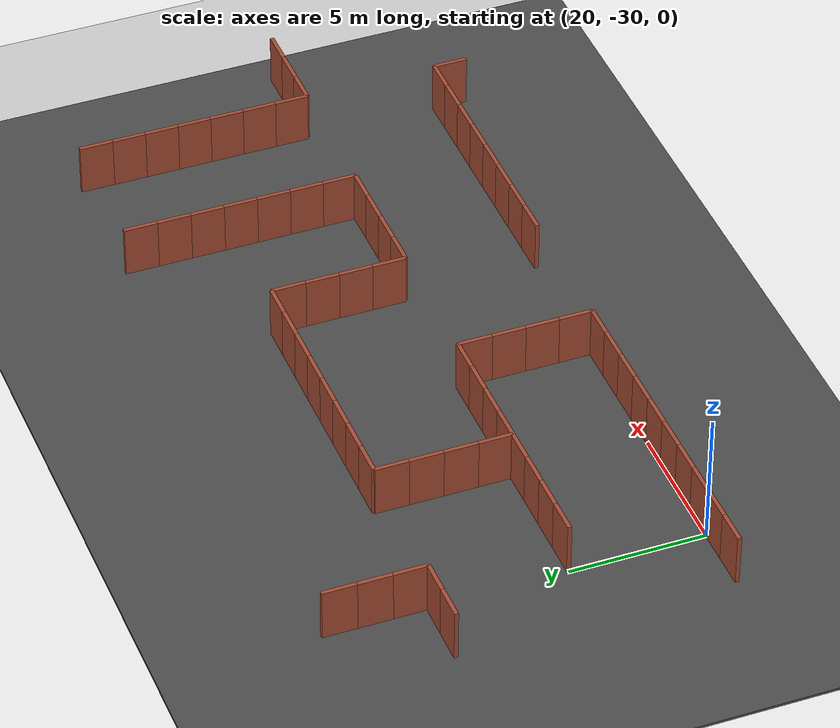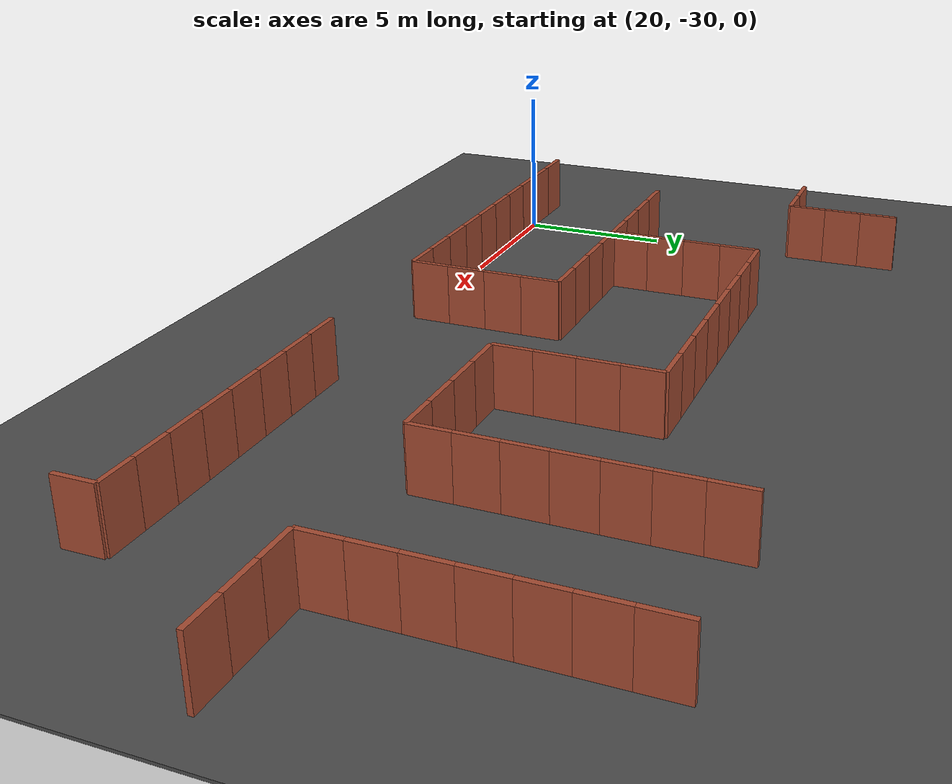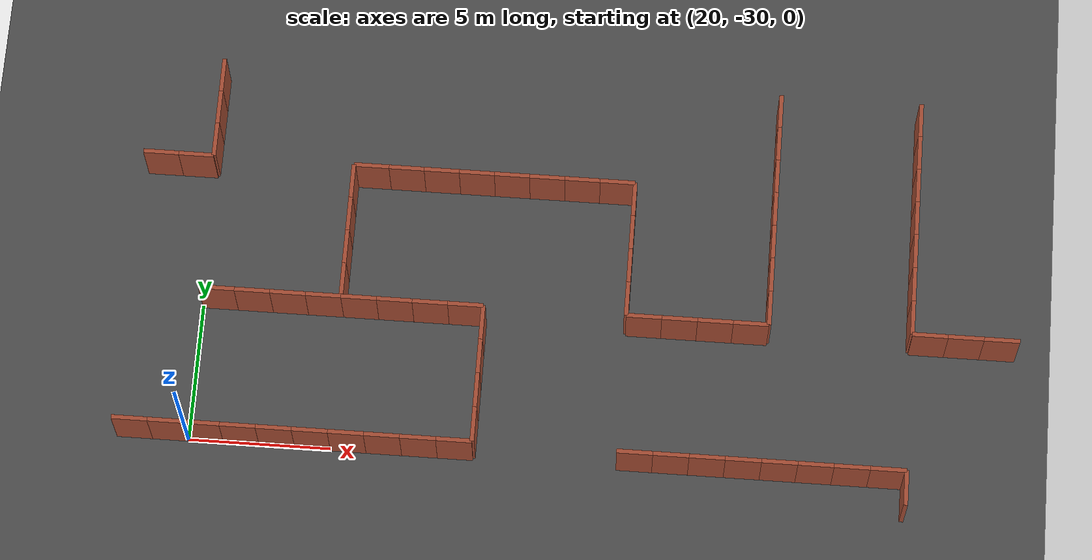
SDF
<sdf version="1.6">
 <world name="default">
  <model name="ground_plane">
   <static>1</static>
   <link name="link">
    <collision name="collision">
     <geometry><plane><normal>0 0 1</normal><size>100 100</size></plane></geometry>
     <surface><friction><ode><mu>100</mu><mu2>50</mu2></ode></friction></surface>
    </collision>
    <visual name="visual">
     <cast_shadows>0</cast_shadows>
     <geometry><plane><normal>0 0 1</normal><size>100 100</size></plane></geometry>
     <material>
      <script><uri>file://media/materials/scripts/gazebo.material</uri><name>Gazebo/Grey</name></script>
     </material>
    </visual>
   </link>
  </model>
  <model name="asphalt_plane">
   <static>1</static>
   <link name="link">
    <collision name="collision"><geometry><box><size>100 100 0.1</size></box></geometry></collision>
    <visual name="visual">
     <cast_shadows>0</cast_shadows>
     <geometry><box><size>100 100 0.1</size></box></geometry>
     <material>
      <script>
       <uri>model://asphalt_plane/materials/scripts</uri>
       <uri>model://asphalt_plane/materials/textures</uri>
       <name>vrc/asphalt</name>
      </script>
     </material>
    </visual>
   </link>
  </model>
  <model name="brick_wall_27_8_vertical1">
   <pose>18.125 -30 0 0 -0 0</pose>
   <link name="Wall_0">
    <collision name="Wall_0_Collision">
     <geometry><box><size>1.25 0.15 2</size></box></geometry>
     <pose>0 0 1 0 -0 0</pose>
    </collision>
    <visual name="Wall_0_Visual">
     <pose>0 0 1 0 -0 0</pose>
     <geometry><box><size>1.25 0.15 2</size></box></geometry>
     <material>
      <script><uri>file://media/materials/scripts/gazebo.material</uri><name>Gazebo/Bricks</name></script>
      <ambient>1 1 1 1</ambient>
     </material>
     <meta><layer>0</layer></meta>
    </visual>
   </link>
   <static>1</static>
  </model>
  <model name="brick_wall_27_12_vertical1">
   <pose>18.125 -20 0 0 -0 0</pose>
   <link name="Wall_0">
    <collision name="Wall_0_Collision">
     <geometry><box><size>1.25 0.15 2</size></box></geometry>
     <pose>0 0 1 0 -0 0</pose>
    </collision>
    <visual name="Wall_0_Visual">
     <pose>0 0 1 0 -0 0</pose>
     <geometry><box><size>1.25 0.15 2</size></box></geometry>
     <material>
      <script><uri>file://media/materials/scripts/gazebo.material</uri><name>Gazebo/Bricks</name></script>
      <ambient>1 1 1 1</ambient>
     </material>
     <meta><layer>0</layer></meta>
    </visual>
   </link>
   <static>1</static>
  </model>
  <model name="brick_wall_28_8_vertical1">
   <pose>20.625 -30 0 0 -0 0</pose>
   <link name="Wall_0">
    <collision name="Wall_0_Collision">
     <geometry><box><size>1.25 0.15 2</size></box></geometry>
     <pose>0 0 1 0 -0 0</pose>
    </collision>
    <visual name="Wall_0_Visual">
     <pose>0 0 1 0 -0 0</pose>
     <geometry><box><size>1.25 0.15 2</size></box></geometry>
     <material>
      <script><uri>file://media/materials/scripts/gazebo.material</uri><name>Gazebo/Bricks</name></script>
      <ambient>1 1 1 1</ambient>
     </material>
     <meta><layer>0</layer></meta>
    </visual>
   </link>
   <static>1</static>
  </model>
  <model name="brick_wall_28_8_vertical2">
   <pose>19.375 -30 0 0 -0 0</pose>
   <link name="Wall_0">
    <collision name="Wall_0_Collision">
     <geometry><box><size>1.25 0.15 2</size></box></geometry>
     <pose>0 0 1 0 -0 0</pose>
    </collision>
    <visual name="Wall_0_Visual">
     <pose>0 0 1 0 -0 0</pose>
     <geometry><box><size>1.25 0.15 2</size></box></geometry>
     <material>
      <script><uri>file://media/materials/scripts/gazebo.material</uri><name>Gazebo/Bricks</name></script>
      <ambient>1 1 1 1</ambient>
     </material>
     <meta><layer>0</layer></meta>
    </visual>
   </link>
   <static>1</static>
  </model>
  <model name="brick_wall_28_10_vertical1">
   <pose>20.625 -25 0 0 -0 0</pose>
   <link name="Wall_0">
    <collision name="Wall_0_Collision">
     <geometry><box><size>1.25 0.15 2</size></box></geometry>
     <pose>0 0 1 0 -0 0</pose>
    </collision>
    <visual name="Wall_0_Visual">
     <pose>0 0 1 0 -0 0</pose>
     <geometry><box><size>1.25 0.15 2</size></box></geometry>
     <material>
      <script><uri>file://media/materials/scripts/gazebo.material</uri><name>Gazebo/Bricks</name></script>
      <ambient>1 1 1 1</ambient>
     </material>
     <meta><layer>0</layer></meta>
    </visual>
   </link>
   <static>1</static>
  </model>
  <model name="brick_wall_28_12_vertical2">
   <pose>19.375 -20 0 0 -0 0</pose>
   <link name="Wall_0">
    <collision name="Wall_0_Collision">
     <geometry><box><size>1.25 0.15 2</size></box></geometry>
     <pose>0 0 1 0 -0 0</pose>
    </collision>
    <visual name="Wall_0_Visual">
     <pose>0 0 1 0 -0 0</pose>
     <geometry><box><size>1.25 0.15 2</size></box></geometry>
     <material>
      <script><uri>file://media/materials/scripts/gazebo.material</uri><name>Gazebo/Bricks</name></script>
      <ambient>1 1 1 1</ambient>
     </material>
     <meta><layer>0</layer></meta>
    </visual>
   </link>
   <static>1</static>
  </model>
  <model name="brick_wall_28_12_horizontal1">
   <pose>20 -19.375 0 0 -0 1.5708</pose>
   <link name="Wall_0">
    <collision name="Wall_0_Collision">
     <geometry><box><size>1.25 0.15 2</size></box></geometry>
     <pose>0 0 1 0 -0 0</pose>
    </collision>
    <visual name="Wall_0_Visual">
     <pose>0 0 1 0 -0 0</pose>
     <geometry><box><size>1.25 0.15 2</size></box></geometry>
     <material>
      <script><uri>file://media/materials/scripts/gazebo.material</uri><name>Gazebo/Bricks</name></script>
      <ambient>1 1 1 1</ambient>
     </material>
     <meta><layer>0</layer></meta>
    </visual>
   </link>
   <static>1</static>
  </model>
  <model name="brick_wall_28_13_horizontal1">
   <pose>20 -16.875 0 0 -0 1.5708</pose>
   <link name="Wall_0">
    <collision name="Wall_0_Collision">
     <geometry><box><size>1.25 0.15 2</size></box></geometry>
     <pose>0 0 1 0 -0 0</pose>
    </collision>
    <visual name="Wall_0_Visual">
     <pose>0 0 1 0 -0 0</pose>
     <geometry><box><size>1.25 0.15 2</size></box></geometry>
     <material>
      <script><uri>file://media/materials/scripts/gazebo.material</uri><name>Gazebo/Bricks</name></script>
      <ambient>1 1 1 1</ambient>
     </material>
     <meta><layer>0</layer></meta>
    </visual>
   </link>
   <static>1</static>
  </model>
  <model name="brick_wall_28_13_horizontal2">
   <pose>20 -18.125 0 0 -0 1.5708</pose>
   <link name="Wall_0">
    <collision name="Wall_0_Collision">
     <geometry><box><size>1.25 0.15 2</size></box></geometry>
     <pose>0 0 1 0 -0 0</pose>
    </collision>
    <visual name="Wall_0_Visual">
     <pose>0 0 1 0 -0 0</pose>
     <geometry><box><size>1.25 0.15 2</size></box></geometry>
     <material>
      <script><uri>file://media/materials/scripts/gazebo.material</uri><name>Gazebo/Bricks</name></script>
      <ambient>1 1 1 1</ambient>
     </material>
     <meta><layer>0</layer></meta>
    </visual>
   </link>
   <static>1</static>
  </model>
  <model name="brick_wall_29_8_vertical1">
   <pose>23.125 -30 0 0 -0 0</pose>
   <link name="Wall_0">
    <collision name="Wall_0_Collision">
     <geometry><box><size>1.25 0.15 2</size></box></geometry>
     <pose>0 0 1 0 -0 0</pose>
    </collision>
    <visual name="Wall_0_Visual">
     <pose>0 0 1 0 -0 0</pose>
     <geometry><box><size>1.25 0.15 2</size></box></geometry>
     <material>
      <script><uri>file://media/materials/scripts/gazebo.material</uri><name>Gazebo/Bricks</name></script>
      <ambient>1 1 1 1</ambient>
     </material>
     <meta><layer>0</layer></meta>
    </visual>
   </link>
   <static>1</static>
  </model>
  <model name="brick_wall_29_8_vertical2">
   <pose>21.875 -30 0 0 -0 0</pose>
   <link name="Wall_0">
    <collision name="Wall_0_Collision">
     <geometry><box><size>1.25 0.15 2</size></box></geometry>
     <pose>0 0 1 0 -0 0</pose>
    </collision>
    <visual name="Wall_0_Visual">
     <pose>0 0 1 0 -0 0</pose>
     <geometry><box><size>1.25 0.15 2</size></box></geometry>
     <material>
      <script><uri>file://media/materials/scripts/gazebo.material</uri><name>Gazebo/Bricks</name></script>
      <ambient>1 1 1 1</ambient>
     </material>
     <meta><layer>0</layer></meta>
    </visual>
   </link>
   <static>1</static>
  </model>
  <model name="brick_wall_29_10_vertical1">
   <pose>23.125 -25 0 0 -0 0</pose>
   <link name="Wall_0">
    <collision name="Wall_0_Collision">
     <geometry><box><size>1.25 0.15 2</size></box></geometry>
     <pose>0 0 1 0 -0 0</pose>
    </collision>
    <visual name="Wall_0_Visual">
     <pose>0 0 1 0 -0 0</pose>
     <geometry><box><size>1.25 0.15 2</size></box></geometry>
     <material>
      <script><uri>file://media/materials/scripts/gazebo.material</uri><name>Gazebo/Bricks</name></script>
      <ambient>1 1 1 1</ambient>
     </material>
     <meta><layer>0</layer></meta>
    </visual>
   </link>
   <static>1</static>
  </model>
  <model name="brick_wall_29_10_vertical2">
   <pose>21.875 -25 0 0 -0 0</pose>
   <link name="Wall_0">
    <collision name="Wall_0_Collision">
     <geometry><box><size>1.25 0.15 2</size></box></geometry>
     <pose>0 0 1 0 -0 0</pose>
    </collision>
    <visual name="Wall_0_Visual">
     <pose>0 0 1 0 -0 0</pose>
     <geometry><box><size>1.25 0.15 2</size></box></geometry>
     <material>
      <script><uri>file://media/materials/scripts/gazebo.material</uri><name>Gazebo/Bricks</name></script>
      <ambient>1 1 1 1</ambient>
     </material>
     <meta><layer>0</layer></meta>
    </visual>
   </link>
   <static>1</static>
  </model>
  <model name="brick_wall_30_8_vertical1">
   <pose>25.625 -30 0 0 -0 0</pose>
   <link name="Wall_0">
    <collision name="Wall_0_Collision">
     <geometry><box><size>1.25 0.15 2</size></box></geometry>
     <pose>0 0 1 0 -0 0</pose>
    </collision>
    <visual name="Wall_0_Visual">
     <pose>0 0 1 0 -0 0</pose>
     <geometry><box><size>1.25 0.15 2</size></box></geometry>
     <material>
      <script><uri>file://media/materials/scripts/gazebo.material</uri><name>Gazebo/Bricks</name></script>
      <ambient>1 1 1 1</ambient>
     </material>
     <meta><layer>0</layer></meta>
    </visual>
   </link>
   <static>1</static>
  </model>
  <model name="brick_wall_30_8_vertical2">
   <pose>24.375 -30 0 0 -0 0</pose>
   <link name="Wall_0">
    <collision name="Wall_0_Collision">
     <geometry><box><size>1.25 0.15 2</size></box></geometry>
     <pose>0 0 1 0 -0 0</pose>
    </collision>
    <visual name="Wall_0_Visual">
     <pose>0 0 1 0 -0 0</pose>
     <geometry><box><size>1.25 0.15 2</size></box></geometry>
     <material>
      <script><uri>file://media/materials/scripts/gazebo.material</uri><name>Gazebo/Bricks</name></script>
      <ambient>1 1 1 1</ambient>
     </material>
     <meta><layer>0</layer></meta>
    </visual>
   </link>
   <static>1</static>
  </model>
  <model name="brick_wall_30_10_vertical1">
   <pose>25.625 -25 0 0 -0 0</pose>
   <link name="Wall_0">
    <collision name="Wall_0_Collision">
     <geometry><box><size>1.25 0.15 2</size></box></geometry>
     <pose>0 0 1 0 -0 0</pose>
    </collision>
    <visual name="Wall_0_Visual">
     <pose>0 0 1 0 -0 0</pose>
     <geometry><box><size>1.25 0.15 2</size></box></geometry>
     <material>
      <script><uri>file://media/materials/scripts/gazebo.material</uri><name>Gazebo/Bricks</name></script>
      <ambient>1 1 1 1</ambient>
     </material>
     <meta><layer>0</layer></meta>
    </visual>
   </link>
   <static>1</static>
  </model>
  <model name="brick_wall_30_10_vertical2">
   <pose>24.375 -25 0 0 -0 0</pose>
   <link name="Wall_0">
    <collision name="Wall_0_Collision">
     <geometry><box><size>1.25 0.15 2</size></box></geometry>
     <pose>0 0 1 0 -0 0</pose>
    </collision>
    <visual name="Wall_0_Visual">
     <pose>0 0 1 0 -0 0</pose>
     <geometry><box><size>1.25 0.15 2</size></box></geometry>
     <material>
      <script><uri>file://media/materials/scripts/gazebo.material</uri><name>Gazebo/Bricks</name></script>
      <ambient>1 1 1 1</ambient>
     </material>
     <meta><layer>0</layer></meta>
    </visual>
   </link>
   <static>1</static>
  </model>
  <model name="brick_wall_30_10_horizontal1">
   <pose>25 -24.375 0 0 -0 1.5708</pose>
   <link name="Wall_0">
    <collision name="Wall_0_Collision">
     <geometry><box><size>1.25 0.15 2</size></box></geometry>
     <pose>0 0 1 0 -0 0</pose>
    </collision>
    <visual name="Wall_0_Visual">
     <pose>0 0 1 0 -0 0</pose>
     <geometry><box><size>1.25 0.15 2</size></box></geometry>
     <material>
      <script><uri>file://media/materials/scripts/gazebo.material</uri><name>Gazebo/Bricks</name></script>
      <ambient>1 1 1 1</ambient>
     </material>
     <meta><layer>0</layer></meta>
    </visual>
   </link>
   <static>1</static>
  </model>
  <model name="brick_wall_30_11_horizontal1">
   <pose>25 -21.875 0 0 -0 1.5708</pose>
   <link name="Wall_0">
    <collision name="Wall_0_Collision">
     <geometry><box><size>1.25 0.15 2</size></box></geometry>
     <pose>0 0 1 0 -0 0</pose>
    </collision>
    <visual name="Wall_0_Visual">
     <pose>0 0 1 0 -0 0</pose>
     <geometry><box><size>1.25 0.15 2</size></box></geometry>
     <material>
      <script><uri>file://media/materials/scripts/gazebo.material</uri><name>Gazebo/Bricks</name></script>
      <ambient>1 1 1 1</ambient>
     </material>
     <meta><layer>0</layer></meta>
    </visual>
   </link>
   <static>1</static>
  </model>
  <model name="brick_wall_30_11_horizontal2">
   <pose>25 -23.125 0 0 -0 1.5708</pose>
   <link name="Wall_0">
    <collision name="Wall_0_Collision">
     <geometry><box><size>1.25 0.15 2</size></box></geometry>
     <pose>0 0 1 0 -0 0</pose>
    </collision>
    <visual name="Wall_0_Visual">
     <pose>0 0 1 0 -0 0</pose>
     <geometry><box><size>1.25 0.15 2</size></box></geometry>
     <material>
      <script><uri>file://media/materials/scripts/gazebo.material</uri><name>Gazebo/Bricks</name></script>
      <ambient>1 1 1 1</ambient>
     </material>
     <meta><layer>0</layer></meta>
    </visual>
   </link>
   <static>1</static>
  </model>
  <model name="brick_wall_30_12_vertical1">
   <pose>25.625 -20 0 0 -0 0</pose>
   <link name="Wall_0">
    <collision name="Wall_0_Collision">
     <geometry><box><size>1.25 0.15 2</size></box></geometry>
     <pose>0 0 1 0 -0 0</pose>
    </collision>
    <visual name="Wall_0_Visual">
     <pose>0 0 1 0 -0 0</pose>
     <geometry><box><size>1.25 0.15 2</size></box></geometry>
     <material>
      <script><uri>file://media/materials/scripts/gazebo.material</uri><name>Gazebo/Bricks</name></script>
      <ambient>1 1 1 1</ambient>
     </material>
     <meta><layer>0</layer></meta>
    </visual>
   </link>
   <static>1</static>
  </model>
  <model name="brick_wall_30_12_horizontal2">
   <pose>25 -20.625 0 0 -0 1.5708</pose>
   <link name="Wall_0">
    <collision name="Wall_0_Collision">
     <geometry><box><size>1.25 0.15 2</size></box></geometry>
     <pose>0 0 1 0 -0 0</pose>
    </collision>
    <visual name="Wall_0_Visual">
     <pose>0 0 1 0 -0 0</pose>
     <geometry><box><size>1.25 0.15 2</size></box></geometry>
     <material>
      <script><uri>file://media/materials/scripts/gazebo.material</uri><name>Gazebo/Bricks</name></script>
      <ambient>1 1 1 1</ambient>
     </material>
     <meta><layer>0</layer></meta>
    </visual>
   </link>
   <static>1</static>
  </model>
  <model name="brick_wall_31_8_vertical1">
   <pose>28.125 -30 0 0 -0 0</pose>
   <link name="Wall_0">
    <collision name="Wall_0_Collision">
     <geometry><box><size>1.25 0.15 2</size></box></geometry>
     <pose>0 0 1 0 -0 0</pose>
    </collision>
    <visual name="Wall_0_Visual">
     <pose>0 0 1 0 -0 0</pose>
     <geometry><box><size>1.25 0.15 2</size></box></geometry>
     <material>
      <script><uri>file://media/materials/scripts/gazebo.material</uri><name>Gazebo/Bricks</name></script>
      <ambient>1 1 1 1</ambient>
     </material>
     <meta><layer>0</layer></meta>
    </visual>
   </link>
   <static>1</static>
  </model>
  <model name="brick_wall_31_8_vertical2">
   <pose>26.875 -30 0 0 -0 0</pose>
   <link name="Wall_0">
    <collision name="Wall_0_Collision">
     <geometry><box><size>1.25 0.15 2</size></box></geometry>
     <pose>0 0 1 0 -0 0</pose>
    </collision>
    <visual name="Wall_0_Visual">
     <pose>0 0 1 0 -0 0</pose>
     <geometry><box><size>1.25 0.15 2</size></box></geometry>
     <material>
      <script><uri>file://media/materials/scripts/gazebo.material</uri><name>Gazebo/Bricks</name></script>
      <ambient>1 1 1 1</ambient>
     </material>
     <meta><layer>0</layer></meta>
    </visual>
   </link>
   <static>1</static>
  </model>
  <model name="brick_wall_31_10_vertical1">
   <pose>28.125 -25 0 0 -0 0</pose>
   <link name="Wall_0">
    <collision name="Wall_0_Collision">
     <geometry><box><size>1.25 0.15 2</size></box></geometry>
     <pose>0 0 1 0 -0 0</pose>
    </collision>
    <visual name="Wall_0_Visual">
     <pose>0 0 1 0 -0 0</pose>
     <geometry><box><size>1.25 0.15 2</size></box></geometry>
     <material>
      <script><uri>file://media/materials/scripts/gazebo.material</uri><name>Gazebo/Bricks</name></script>
      <ambient>1 1 1 1</ambient>
     </material>
     <meta><layer>0</layer></meta>
    </visual>
   </link>
   <static>1</static>
  </model>
  <model name="brick_wall_31_10_vertical2">
   <pose>26.875 -25 0 0 -0 0</pose>
   <link name="Wall_0">
    <collision name="Wall_0_Collision">
     <geometry><box><size>1.25 0.15 2</size></box></geometry>
     <pose>0 0 1 0 -0 0</pose>
    </collision>
    <visual name="Wall_0_Visual">
     <pose>0 0 1 0 -0 0</pose>
     <geometry><box><size>1.25 0.15 2</size></box></geometry>
     <material>
      <script><uri>file://media/materials/scripts/gazebo.material</uri><name>Gazebo/Bricks</name></script>
      <ambient>1 1 1 1</ambient>
     </material>
     <meta><layer>0</layer></meta>
    </visual>
   </link>
   <static>1</static>
  </model>
  <model name="brick_wall_31_12_vertical1">
   <pose>28.125 -20 0 0 -0 0</pose>
   <link name="Wall_0">
    <collision name="Wall_0_Collision">
     <geometry><box><size>1.25 0.15 2</size></box></geometry>
     <pose>0 0 1 0 -0 0</pose>
    </collision>
    <visual name="Wall_0_Visual">
     <pose>0 0 1 0 -0 0</pose>
     <geometry><box><size>1.25 0.15 2</size></box></geometry>
     <material>
      <script><uri>file://media/materials/scripts/gazebo.material</uri><name>Gazebo/Bricks</name></script>
      <ambient>1 1 1 1</ambient>
     </material>
     <meta><layer>0</layer></meta>
    </visual>
   </link>
   <static>1</static>
  </model>
  <model name="brick_wall_31_12_vertical2">
   <pose>26.875 -20 0 0 -0 0</pose>
   <link name="Wall_0">
    <collision name="Wall_0_Collision">
     <geometry><box><size>1.25 0.15 2</size></box></geometry>
     <pose>0 0 1 0 -0 0</pose>
    </collision>
    <visual name="Wall_0_Visual">
     <pose>0 0 1 0 -0 0</pose>
     <geometry><box><size>1.25 0.15 2</size></box></geometry>
     <material>
      <script><uri>file://media/materials/scripts/gazebo.material</uri><name>Gazebo/Bricks</name></script>
      <ambient>1 1 1 1</ambient>
     </material>
     <meta><layer>0</layer></meta>
    </visual>
   </link>
   <static>1</static>
  </model>
  <model name="brick_wall_32_8_vertical2">
   <pose>29.375 -30 0 0 -0 0</pose>
   <link name="Wall_0">
    <collision name="Wall_0_Collision">
     <geometry><box><size>1.25 0.15 2</size></box></geometry>
     <pose>0 0 1 0 -0 0</pose>
    </collision>
    <visual name="Wall_0_Visual">
     <pose>0 0 1 0 -0 0</pose>
     <geometry><box><size>1.25 0.15 2</size></box></geometry>
     <material>
      <script><uri>file://media/materials/scripts/gazebo.material</uri><name>Gazebo/Bricks</name></script>
      <ambient>1 1 1 1</ambient>
     </material>
     <meta><layer>0</layer></meta>
    </visual>
   </link>
   <static>1</static>
  </model>
  <model name="brick_wall_32_8_horizontal1">
   <pose>30 -29.375 0 0 -0 1.5708</pose>
   <link name="Wall_0">
    <collision name="Wall_0_Collision">
     <geometry><box><size>1.25 0.15 2</size></box></geometry>
     <pose>0 0 1 0 -0 0</pose>
    </collision>
    <visual name="Wall_0_Visual">
     <pose>0 0 1 0 -0 0</pose>
     <geometry><box><size>1.25 0.15 2</size></box></geometry>
     <material>
      <script><uri>file://media/materials/scripts/gazebo.material</uri><name>Gazebo/Bricks</name></script>
      <ambient>1 1 1 1</ambient>
     </material>
     <meta><layer>0</layer></meta>
    </visual>
   </link>
   <static>1</static>
  </model>
  <model name="brick_wall_32_9_horizontal1">
   <pose>30 -26.875 0 0 -0 1.5708</pose>
   <link name="Wall_0">
    <collision name="Wall_0_Collision">
     <geometry><box><size>1.25 0.15 2</size></box></geometry>
     <pose>0 0 1 0 -0 0</pose>
    </collision>
    <visual name="Wall_0_Visual">
     <pose>0 0 1 0 -0 0</pose>
     <geometry><box><size>1.25 0.15 2</size></box></geometry>
     <material>
      <script><uri>file://media/materials/scripts/gazebo.material</uri><name>Gazebo/Bricks</name></script>
      <ambient>1 1 1 1</ambient>
     </material>
     <meta><layer>0</layer></meta>
    </visual>
   </link>
   <static>1</static>
  </model>
  <model name="brick_wall_32_9_horizontal2">
   <pose>30 -28.125 0 0 -0 1.5708</pose>
   <link name="Wall_0">
    <collision name="Wall_0_Collision">
     <geometry><box><size>1.25 0.15 2</size></box></geometry>
     <pose>0 0 1 0 -0 0</pose>
    </collision>
    <visual name="Wall_0_Visual">
     <pose>0 0 1 0 -0 0</pose>
     <geometry><box><size>1.25 0.15 2</size></box></geometry>
     <material>
      <script><uri>file://media/materials/scripts/gazebo.material</uri><name>Gazebo/Bricks</name></script>
      <ambient>1 1 1 1</ambient>
     </material>
     <meta><layer>0</layer></meta>
    </visual>
   </link>
   <static>1</static>
  </model>
  <model name="brick_wall_32_10_vertical2">
   <pose>29.375 -25 0 0 -0 0</pose>
   <link name="Wall_0">
    <collision name="Wall_0_Collision">
     <geometry><box><size>1.25 0.15 2</size></box></geometry>
     <pose>0 0 1 0 -0 0</pose>
    </collision>
    <visual name="Wall_0_Visual">
     <pose>0 0 1 0 -0 0</pose>
     <geometry><box><size>1.25 0.15 2</size></box></geometry>
     <material>
      <script><uri>file://media/materials/scripts/gazebo.material</uri><name>Gazebo/Bricks</name></script>
      <ambient>1 1 1 1</ambient>
     </material>
     <meta><layer>0</layer></meta>
    </visual>
   </link>
   <static>1</static>
  </model>
  <model name="brick_wall_32_10_horizontal2">
   <pose>30 -25.625 0 0 -0 1.5708</pose>
   <link name="Wall_0">
    <collision name="Wall_0_Collision">
     <geometry><box><size>1.25 0.15 2</size></box></geometry>
     <pose>0 0 1 0 -0 0</pose>
    </collision>
    <visual name="Wall_0_Visual">
     <pose>0 0 1 0 -0 0</pose>
     <geometry><box><size>1.25 0.15 2</size></box></geometry>
     <material>
      <script><uri>file://media/materials/scripts/gazebo.material</uri><name>Gazebo/Bricks</name></script>
      <ambient>1 1 1 1</ambient>
     </material>
     <meta><layer>0</layer></meta>
    </visual>
   </link>
   <static>1</static>
  </model>
  <model name="brick_wall_32_12_vertical1">
   <pose>30.625 -20 0 0 -0 0</pose>
   <link name="Wall_0">
    <collision name="Wall_0_Collision">
     <geometry><box><size>1.25 0.15 2</size></box></geometry>
     <pose>0 0 1 0 -0 0</pose>
    </collision>
    <visual name="Wall_0_Visual">
     <pose>0 0 1 0 -0 0</pose>
     <geometry><box><size>1.25 0.15 2</size></box></geometry>
     <material>
      <script><uri>file://media/materials/scripts/gazebo.material</uri><name>Gazebo/Bricks</name></script>
      <ambient>1 1 1 1</ambient>
     </material>
     <meta><layer>0</layer></meta>
    </visual>
   </link>
   <static>1</static>
  </model>
  <model name="brick_wall_32_12_vertical2">
   <pose>29.375 -20 0 0 -0 0</pose>
   <link name="Wall_0">
    <collision name="Wall_0_Collision">
     <geometry><box><size>1.25 0.15 2</size></box></geometry>
     <pose>0 0 1 0 -0 0</pose>
    </collision>
    <visual name="Wall_0_Visual">
     <pose>0 0 1 0 -0 0</pose>
     <geometry><box><size>1.25 0.15 2</size></box></geometry>
     <material>
      <script><uri>file://media/materials/scripts/gazebo.material</uri><name>Gazebo/Bricks</name></script>
      <ambient>1 1 1 1</ambient>
     </material>
     <meta><layer>0</layer></meta>
    </visual>
   </link>
   <static>1</static>
  </model>
  <model name="brick_wall_33_12_vertical1">
   <pose>33.125 -20 0 0 -0 0</pose>
   <link name="Wall_0">
    <collision name="Wall_0_Collision">
     <geometry><box><size>1.25 0.15 2</size></box></geometry>
     <pose>0 0 1 0 -0 0</pose>
    </collision>
    <visual name="Wall_0_Visual">
     <pose>0 0 1 0 -0 0</pose>
     <geometry><box><size>1.25 0.15 2</size></box></geometry>
     <material>
      <script><uri>file://media/materials/scripts/gazebo.material</uri><name>Gazebo/Bricks</name></script>
      <ambient>1 1 1 1</ambient>
     </material>
     <meta><layer>0</layer></meta>
    </visual>
   </link>
   <static>1</static>
  </model>
  <model name="brick_wall_33_12_vertical2">
   <pose>31.875 -20 0 0 -0 0</pose>
   <link name="Wall_0">
    <collision name="Wall_0_Collision">
     <geometry><box><size>1.25 0.15 2</size></box></geometry>
     <pose>0 0 1 0 -0 0</pose>
    </collision>
    <visual name="Wall_0_Visual">
     <pose>0 0 1 0 -0 0</pose>
     <geometry><box><size>1.25 0.15 2</size></box></geometry>
     <material>
      <script><uri>file://media/materials/scripts/gazebo.material</uri><name>Gazebo/Bricks</name></script>
      <ambient>1 1 1 1</ambient>
     </material>
     <meta><layer>0</layer></meta>
    </visual>
   </link>
   <static>1</static>
  </model>
  <model name="brick_wall_34_8_vertical1">
   <pose>35.625 -30 0 0 -0 0</pose>
   <link name="Wall_0">
    <collision name="Wall_0_Collision">
     <geometry><box><size>1.25 0.15 2</size></box></geometry>
     <pose>0 0 1 0 -0 0</pose>
    </collision>
    <visual name="Wall_0_Visual">
     <pose>0 0 1 0 -0 0</pose>
     <geometry><box><size>1.25 0.15 2</size></box></geometry>
     <material>
      <script><uri>file://media/materials/scripts/gazebo.material</uri><name>Gazebo/Bricks</name></script>
      <ambient>1 1 1 1</ambient>
     </material>
     <meta><layer>0</layer></meta>
    </visual>
   </link>
   <static>1</static>
  </model>
  <model name="brick_wall_34_10_vertical1">
   <pose>35.625 -25 0 0 -0 0</pose>
   <link name="Wall_0">
    <collision name="Wall_0_Collision">
     <geometry><box><size>1.25 0.15 2</size></box></geometry>
     <pose>0 0 1 0 -0 0</pose>
    </collision>
    <visual name="Wall_0_Visual">
     <pose>0 0 1 0 -0 0</pose>
     <geometry><box><size>1.25 0.15 2</size></box></geometry>
     <material>
      <script><uri>file://media/materials/scripts/gazebo.material</uri><name>Gazebo/Bricks</name></script>
      <ambient>1 1 1 1</ambient>
     </material>
     <meta><layer>0</layer></meta>
    </visual>
   </link>
   <static>1</static>
  </model>
  <model name="brick_wall_34_10_horizontal1">
   <pose>35 -24.375 0 0 -0 1.5708</pose>
   <link name="Wall_0">
    <collision name="Wall_0_Collision">
     <geometry><box><size>1.25 0.15 2</size></box></geometry>
     <pose>0 0 1 0 -0 0</pose>
    </collision>
    <visual name="Wall_0_Visual">
     <pose>0 0 1 0 -0 0</pose>
     <geometry><box><size>1.25 0.15 2</size></box></geometry>
     <material>
      <script><uri>file://media/materials/scripts/gazebo.material</uri><name>Gazebo/Bricks</name></script>
      <ambient>1 1 1 1</ambient>
     </material>
     <meta><layer>0</layer></meta>
    </visual>
   </link>
   <static>1</static>
  </model>
  <model name="brick_wall_34_11_horizontal1">
   <pose>35 -21.875 0 0 -0 1.5708</pose>
   <link name="Wall_0">
    <collision name="Wall_0_Collision">
     <geometry><box><size>1.25 0.15 2</size></box></geometry>
     <pose>0 0 1 0 -0 0</pose>
    </collision>
    <visual name="Wall_0_Visual">
     <pose>0 0 1 0 -0 0</pose>
     <geometry><box><size>1.25 0.15 2</size></box></geometry>
     <material>
      <script><uri>file://media/materials/scripts/gazebo.material</uri><name>Gazebo/Bricks</name></script>
      <ambient>1 1 1 1</ambient>
     </material>
     <meta><layer>0</layer></meta>
    </visual>
   </link>
   <static>1</static>
  </model>
  <model name="brick_wall_34_11_horizontal2">
   <pose>35 -23.125 0 0 -0 1.5708</pose>
   <link name="Wall_0">
    <collision name="Wall_0_Collision">
     <geometry><box><size>1.25 0.15 2</size></box></geometry>
     <pose>0 0 1 0 -0 0</pose>
    </collision>
    <visual name="Wall_0_Visual">
     <pose>0 0 1 0 -0 0</pose>
     <geometry><box><size>1.25 0.15 2</size></box></geometry>
     <material>
      <script><uri>file://media/materials/scripts/gazebo.material</uri><name>Gazebo/Bricks</name></script>
      <ambient>1 1 1 1</ambient>
     </material>
     <meta><layer>0</layer></meta>
    </visual>
   </link>
   <static>1</static>
  </model>
  <model name="brick_wall_34_12_vertical2">
   <pose>34.375 -20 0 0 -0 0</pose>
   <link name="Wall_0">
    <collision name="Wall_0_Collision">
     <geometry><box><size>1.25 0.15 2</size></box></geometry>
     <pose>0 0 1 0 -0 0</pose>
    </collision>
    <visual name="Wall_0_Visual">
     <pose>0 0 1 0 -0 0</pose>
     <geometry><box><size>1.25 0.15 2</size></box></geometry>
     <material>
      <script><uri>file://media/materials/scripts/gazebo.material</uri><name>Gazebo/Bricks</name></script>
      <ambient>1 1 1 1</ambient>
     </material>
     <meta><layer>0</layer></meta>
    </visual>
   </link>
   <static>1</static>
  </model>
  <model name="brick_wall_34_12_horizontal2">
   <pose>35 -20.625 0 0 -0 1.5708</pose>
   <link name="Wall_0">
    <collision name="Wall_0_Collision">
     <geometry><box><size>1.25 0.15 2</size></box></geometry>
     <pose>0 0 1 0 -0 0</pose>
    </collision>
    <visual name="Wall_0_Visual">
     <pose>0 0 1 0 -0 0</pose>
     <geometry><box><size>1.25 0.15 2</size></box></geometry>
     <material>
      <script><uri>file://media/materials/scripts/gazebo.material</uri><name>Gazebo/Bricks</name></script>
      <ambient>1 1 1 1</ambient>
     </material>
     <meta><layer>0</layer></meta>
    </visual>
   </link>
   <static>1</static>
  </model>
  <model name="brick_wall_35_8_vertical1">
   <pose>38.125 -30 0 0 -0 0</pose>
   <link name="Wall_0">
    <collision name="Wall_0_Collision">
     <geometry><box><size>1.25 0.15 2</size></box></geometry>
     <pose>0 0 1 0 -0 0</pose>
    </collision>
    <visual name="Wall_0_Visual">
     <pose>0 0 1 0 -0 0</pose>
     <geometry><box><size>1.25 0.15 2</size></box></geometry>
     <material>
      <script><uri>file://media/materials/scripts/gazebo.material</uri><name>Gazebo/Bricks</name></script>
      <ambient>1 1 1 1</ambient>
     </material>
     <meta><layer>0</layer></meta>
    </visual>
   </link>
   <static>1</static>
  </model>
  <model name="brick_wall_35_8_vertical2">
   <pose>36.875 -30 0 0 -0 0</pose>
   <link name="Wall_0">
    <collision name="Wall_0_Collision">
     <geometry><box><size>1.25 0.15 2</size></box></geometry>
     <pose>0 0 1 0 -0 0</pose>
    </collision>
    <visual name="Wall_0_Visual">
     <pose>0 0 1 0 -0 0</pose>
     <geometry><box><size>1.25 0.15 2</size></box></geometry>
     <material>
      <script><uri>file://media/materials/scripts/gazebo.material</uri><name>Gazebo/Bricks</name></script>
      <ambient>1 1 1 1</ambient>
     </material>
     <meta><layer>0</layer></meta>
    </visual>
   </link>
   <static>1</static>
  </model>
  <model name="brick_wall_35_10_vertical1">
   <pose>38.125 -25 0 0 -0 0</pose>
   <link name="Wall_0">
    <collision name="Wall_0_Collision">
     <geometry><box><size>1.25 0.15 2</size></box></geometry>
     <pose>0 0 1 0 -0 0</pose>
    </collision>
    <visual name="Wall_0_Visual">
     <pose>0 0 1 0 -0 0</pose>
     <geometry><box><size>1.25 0.15 2</size></box></geometry>
     <material>
      <script><uri>file://media/materials/scripts/gazebo.material</uri><name>Gazebo/Bricks</name></script>
      <ambient>1 1 1 1</ambient>
     </material>
     <meta><layer>0</layer></meta>
    </visual>
   </link>
   <static>1</static>
  </model>
  <model name="brick_wall_35_10_vertical2">
   <pose>36.875 -25 0 0 -0 0</pose>
   <link name="Wall_0">
    <collision name="Wall_0_Collision">
     <geometry><box><size>1.25 0.15 2</size></box></geometry>
     <pose>0 0 1 0 -0 0</pose>
    </collision>
    <visual name="Wall_0_Visual">
     <pose>0 0 1 0 -0 0</pose>
     <geometry><box><size>1.25 0.15 2</size></box></geometry>
     <material>
      <script><uri>file://media/materials/scripts/gazebo.material</uri><name>Gazebo/Bricks</name></script>
      <ambient>1 1 1 1</ambient>
     </material>
     <meta><layer>0</layer></meta>
    </visual>
   </link>
   <static>1</static>
  </model>
  <model name="brick_wall_36_8_vertical1">
   <pose>40.625 -30 0 0 -0 0</pose>
   <link name="Wall_0">
    <collision name="Wall_0_Collision">
     <geometry><box><size>1.25 0.15 2</size></box></geometry>
     <pose>0 0 1 0 -0 0</pose>
    </collision>
    <visual name="Wall_0_Visual">
     <pose>0 0 1 0 -0 0</pose>
     <geometry><box><size>1.25 0.15 2</size></box></geometry>
     <material>
      <script><uri>file://media/materials/scripts/gazebo.material</uri><name>Gazebo/Bricks</name></script>
      <ambient>1 1 1 1</ambient>
     </material>
     <meta><layer>0</layer></meta>
    </visual>
   </link>
   <static>1</static>
  </model>
  <model name="brick_wall_36_8_vertical2">
   <pose>39.375 -30 0 0 -0 0</pose>
   <link name="Wall_0">
    <collision name="Wall_0_Collision">
     <geometry><box><size>1.25 0.15 2</size></box></geometry>
     <pose>0 0 1 0 -0 0</pose>
    </collision>
    <visual name="Wall_0_Visual">
     <pose>0 0 1 0 -0 0</pose>
     <geometry><box><size>1.25 0.15 2</size></box></geometry>
     <material>
      <script><uri>file://media/materials/scripts/gazebo.material</uri><name>Gazebo/Bricks</name></script>
      <ambient>1 1 1 1</ambient>
     </material>
     <meta><layer>0</layer></meta>
    </visual>
   </link>
   <static>1</static>
  </model>
  <model name="brick_wall_36_10_vertical2">
   <pose>39.375 -25 0 0 -0 0</pose>
   <link name="Wall_0">
    <collision name="Wall_0_Collision">
     <geometry><box><size>1.25 0.15 2</size></box></geometry>
     <pose>0 0 1 0 -0 0</pose>
    </collision>
    <visual name="Wall_0_Visual">
     <pose>0 0 1 0 -0 0</pose>
     <geometry><box><size>1.25 0.15 2</size></box></geometry>
     <material>
      <script><uri>file://media/materials/scripts/gazebo.material</uri><name>Gazebo/Bricks</name></script>
      <ambient>1 1 1 1</ambient>
     </material>
     <meta><layer>0</layer></meta>
    </visual>
   </link>
   <static>1</static>
  </model>
  <model name="brick_wall_36_10_horizontal1">
   <pose>40 -24.375 0 0 -0 1.5708</pose>
   <link name="Wall_0">
    <collision name="Wall_0_Collision">
     <geometry><box><size>1.25 0.15 2</size></box></geometry>
     <pose>0 0 1 0 -0 0</pose>
    </collision>
    <visual name="Wall_0_Visual">
     <pose>0 0 1 0 -0 0</pose>
     <geometry><box><size>1.25 0.15 2</size></box></geometry>
     <material>
      <script><uri>file://media/materials/scripts/gazebo.material</uri><name>Gazebo/Bricks</name></script>
      <ambient>1 1 1 1</ambient>
     </material>
     <meta><layer>0</layer></meta>
    </visual>
   </link>
   <static>1</static>
  </model>
  <model name="brick_wall_36_11_horizontal1">
   <pose>40 -21.875 0 0 -0 1.5708</pose>
   <link name="Wall_0">
    <collision name="Wall_0_Collision">
     <geometry><box><size>1.25 0.15 2</size></box></geometry>
     <pose>0 0 1 0 -0 0</pose>
    </collision>
    <visual name="Wall_0_Visual">
     <pose>0 0 1 0 -0 0</pose>
     <geometry><box><size>1.25 0.15 2</size></box></geometry>
     <material>
      <script><uri>file://media/materials/scripts/gazebo.material</uri><name>Gazebo/Bricks</name></script>
      <ambient>1 1 1 1</ambient>
     </material>
     <meta><layer>0</layer></meta>
    </visual>
   </link>
   <static>1</static>
  </model>
  <model name="brick_wall_36_11_horizontal2">
   <pose>40 -23.125 0 0 -0 1.5708</pose>
   <link name="Wall_0">
    <collision name="Wall_0_Collision">
     <geometry><box><size>1.25 0.15 2</size></box></geometry>
     <pose>0 0 1 0 -0 0</pose>
    </collision>
    <visual name="Wall_0_Visual">
     <pose>0 0 1 0 -0 0</pose>
     <geometry><box><size>1.25 0.15 2</size></box></geometry>
     <material>
      <script><uri>file://media/materials/scripts/gazebo.material</uri><name>Gazebo/Bricks</name></script>
      <ambient>1 1 1 1</ambient>
     </material>
     <meta><layer>0</layer></meta>
    </visual>
   </link>
   <static>1</static>
  </model>
  <model name="brick_wall_36_12_horizontal1">
   <pose>40 -19.375 0 0 -0 1.5708</pose>
   <link name="Wall_0">
    <collision name="Wall_0_Collision">
     <geometry><box><size>1.25 0.15 2</size></box></geometry>
     <pose>0 0 1 0 -0 0</pose>
    </collision>
    <visual name="Wall_0_Visual">
     <pose>0 0 1 0 -0 0</pose>
     <geometry><box><size>1.25 0.15 2</size></box></geometry>
     <material>
      <script><uri>file://media/materials/scripts/gazebo.material</uri><name>Gazebo/Bricks</name></script>
      <ambient>1 1 1 1</ambient>
     </material>
     <meta><layer>0</layer></meta>
    </visual>
   </link>
   <static>1</static>
  </model>
  <model name="brick_wall_36_12_horizontal2">
   <pose>40 -20.625 0 0 -0 1.5708</pose>
   <link name="Wall_0">
    <collision name="Wall_0_Collision">
     <geometry><box><size>1.25 0.15 2</size></box></geometry>
     <pose>0 0 1 0 -0 0</pose>
    </collision>
    <visual name="Wall_0_Visual">
     <pose>0 0 1 0 -0 0</pose>
     <geometry><box><size>1.25 0.15 2</size></box></geometry>
     <material>
      <script><uri>file://media/materials/scripts/gazebo.material</uri><name>Gazebo/Bricks</name></script>
      <ambient>1 1 1 1</ambient>
     </material>
     <meta><layer>0</layer></meta>
    </visual>
   </link>
   <static>1</static>
  </model>
  <model name="brick_wall_36_13_horizontal1">
   <pose>40 -16.875 0 0 -0 1.5708</pose>
   <link name="Wall_0">
    <collision name="Wall_0_Collision">
     <geometry><box><size>1.25 0.15 2</size></box></geometry>
     <pose>0 0 1 0 -0 0</pose>
    </collision>
    <visual name="Wall_0_Visual">
     <pose>0 0 1 0 -0 0</pose>
     <geometry><box><size>1.25 0.15 2</size></box></geometry>
     <material>
      <script><uri>file://media/materials/scripts/gazebo.material</uri><name>Gazebo/Bricks</name></script>
      <ambient>1 1 1 1</ambient>
     </material>
     <meta><layer>0</layer></meta>
    </visual>
   </link>
   <static>1</static>
  </model>
  <model name="brick_wall_36_13_horizontal2">
   <pose>40 -18.125 0 0 -0 1.5708</pose>
   <link name="Wall_0">
    <collision name="Wall_0_Collision">
     <geometry><box><size>1.25 0.15 2</size></box></geometry>
     <pose>0 0 1 0 -0 0</pose>
    </collision>
    <visual name="Wall_0_Visual">
     <pose>0 0 1 0 -0 0</pose>
     <geometry><box><size>1.25 0.15 2</size></box></geometry>
     <material>
      <script><uri>file://media/materials/scripts/gazebo.material</uri><name>Gazebo/Bricks</name></script>
      <ambient>1 1 1 1</ambient>
     </material>
     <meta><layer>0</layer></meta>
    </visual>
   </link>
   <static>1</static>
  </model>
  <model name="brick_wall_37_8_vertical1">
   <pose>43.125 -30 0 0 -0 0</pose>
   <link name="Wall_0">
    <collision name="Wall_0_Collision">
     <geometry><box><size>1.25 0.15 2</size></box></geometry>
     <pose>0 0 1 0 -0 0</pose>
    </collision>
    <visual name="Wall_0_Visual">
     <pose>0 0 1 0 -0 0</pose>
     <geometry><box><size>1.25 0.15 2</size></box></geometry>
     <material>
      <script><uri>file://media/materials/scripts/gazebo.material</uri><name>Gazebo/Bricks</name></script>
      <ambient>1 1 1 1</ambient>
     </material>
     <meta><layer>0</layer></meta>
    </visual>
   </link>
   <static>1</static>
  </model>
  <model name="brick_wall_37_8_vertical2">
   <pose>41.875 -30 0 0 -0 0</pose>
   <link name="Wall_0">
    <collision name="Wall_0_Collision">
     <geometry><box><size>1.25 0.15 2</size></box></geometry>
     <pose>0 0 1 0 -0 0</pose>
    </collision>
    <visual name="Wall_0_Visual">
     <pose>0 0 1 0 -0 0</pose>
     <geometry><box><size>1.25 0.15 2</size></box></geometry>
     <material>
      <script><uri>file://media/materials/scripts/gazebo.material</uri><name>Gazebo/Bricks</name></script>
      <ambient>1 1 1 1</ambient>
     </material>
     <meta><layer>0</layer></meta>
    </visual>
   </link>
   <static>1</static>
  </model>
  <model name="brick_wall_38_8_vertical2">
   <pose>44.375 -30 0 0 -0 0</pose>
   <link name="Wall_0">
    <collision name="Wall_0_Collision">
     <geometry><box><size>1.25 0.15 2</size></box></geometry>
     <pose>0 0 1 0 -0 0</pose>
    </collision>
    <visual name="Wall_0_Visual">
     <pose>0 0 1 0 -0 0</pose>
     <geometry><box><size>1.25 0.15 2</size></box></geometry>
     <material>
      <script><uri>file://media/materials/scripts/gazebo.material</uri><name>Gazebo/Bricks</name></script>
      <ambient>1 1 1 1</ambient>
     </material>
     <meta><layer>0</layer></meta>
    </visual>
   </link>
   <static>1</static>
  </model>
  <model name="brick_wall_38_8_horizontal2">
   <pose>45 -30.625 0 0 -0 1.5708</pose>
   <link name="Wall_0">
    <collision name="Wall_0_Collision">
     <geometry><box><size>1.25 0.15 2</size></box></geometry>
     <pose>0 0 1 0 -0 0</pose>
    </collision>
    <visual name="Wall_0_Visual">
     <pose>0 0 1 0 -0 0</pose>
     <geometry><box><size>1.25 0.15 2</size></box></geometry>
     <material>
      <script><uri>file://media/materials/scripts/gazebo.material</uri><name>Gazebo/Bricks</name></script>
      <ambient>1 1 1 1</ambient>
     </material>
     <meta><layer>0</layer></meta>
    </visual>
   </link>
   <static>1</static>
  </model>
  <model name="brick_wall_38_10_vertical1">
   <pose>45.625 -25 0 0 -0 0</pose>
   <link name="Wall_0">
    <collision name="Wall_0_Collision">
     <geometry><box><size>1.25 0.15 2</size></box></geometry>
     <pose>0 0 1 0 -0 0</pose>
    </collision>
    <visual name="Wall_0_Visual">
     <pose>0 0 1 0 -0 0</pose>
     <geometry><box><size>1.25 0.15 2</size></box></geometry>
     <material>
      <script><uri>file://media/materials/scripts/gazebo.material</uri><name>Gazebo/Bricks</name></script>
      <ambient>1 1 1 1</ambient>
     </material>
     <meta><layer>0</layer></meta>
    </visual>
   </link>
   <static>1</static>
  </model>
  <model name="brick_wall_38_10_horizontal1">
   <pose>45 -24.375 0 0 -0 1.5708</pose>
   <link name="Wall_0">
    <collision name="Wall_0_Collision">
     <geometry><box><size>1.25 0.15 2</size></box></geometry>
     <pose>0 0 1 0 -0 0</pose>
    </collision>
    <visual name="Wall_0_Visual">
     <pose>0 0 1 0 -0 0</pose>
     <geometry><box><size>1.25 0.15 2</size></box></geometry>
     <material>
      <script><uri>file://media/materials/scripts/gazebo.material</uri><name>Gazebo/Bricks</name></script>
      <ambient>1 1 1 1</ambient>
     </material>
     <meta><layer>0</layer></meta>
    </visual>
   </link>
   <static>1</static>
  </model>
  <model name="brick_wall_38_11_horizontal1">
   <pose>45 -21.875 0 0 -0 1.5708</pose>
   <link name="Wall_0">
    <collision name="Wall_0_Collision">
     <geometry><box><size>1.25 0.15 2</size></box></geometry>
     <pose>0 0 1 0 -0 0</pose>
    </collision>
    <visual name="Wall_0_Visual">
     <pose>0 0 1 0 -0 0</pose>
     <geometry><box><size>1.25 0.15 2</size></box></geometry>
     <material>
      <script><uri>file://media/materials/scripts/gazebo.material</uri><name>Gazebo/Bricks</name></script>
      <ambient>1 1 1 1</ambient>
     </material>
     <meta><layer>0</layer></meta>
    </visual>
   </link>
   <static>1</static>
  </model>
  <model name="brick_wall_38_11_horizontal2">
   <pose>45 -23.125 0 0 -0 1.5708</pose>
   <link name="Wall_0">
    <collision name="Wall_0_Collision">
     <geometry><box><size>1.25 0.15 2</size></box></geometry>
     <pose>0 0 1 0 -0 0</pose>
    </collision>
    <visual name="Wall_0_Visual">
     <pose>0 0 1 0 -0 0</pose>
     <geometry><box><size>1.25 0.15 2</size></box></geometry>
     <material>
      <script><uri>file://media/materials/scripts/gazebo.material</uri><name>Gazebo/Bricks</name></script>
      <ambient>1 1 1 1</ambient>
     </material>
     <meta><layer>0</layer></meta>
    </visual>
   </link>
   <static>1</static>
  </model>
  <model name="brick_wall_38_12_horizontal1">
   <pose>45 -19.375 0 0 -0 1.5708</pose>
   <link name="Wall_0">
    <collision name="Wall_0_Collision">
     <geometry><box><size>1.25 0.15 2</size></box></geometry>
     <pose>0 0 1 0 -0 0</pose>
    </collision>
    <visual name="Wall_0_Visual">
     <pose>0 0 1 0 -0 0</pose>
     <geometry><box><size>1.25 0.15 2</size></box></geometry>
     <material>
      <script><uri>file://media/materials/scripts/gazebo.material</uri><name>Gazebo/Bricks</name></script>
      <ambient>1 1 1 1</ambient>
     </material>
     <meta><layer>0</layer></meta>
    </visual>
   </link>
   <static>1</static>
  </model>
  <model name="brick_wall_38_12_horizontal2">
   <pose>45 -20.625 0 0 -0 1.5708</pose>
   <link name="Wall_0">
    <collision name="Wall_0_Collision">
     <geometry><box><size>1.25 0.15 2</size></box></geometry>
     <pose>0 0 1 0 -0 0</pose>
    </collision>
    <visual name="Wall_0_Visual">
     <pose>0 0 1 0 -0 0</pose>
     <geometry><box><size>1.25 0.15 2</size></box></geometry>
     <material>
      <script><uri>file://media/materials/scripts/gazebo.material</uri><name>Gazebo/Bricks</name></script>
      <ambient>1 1 1 1</ambient>
     </material>
     <meta><layer>0</layer></meta>
    </visual>
   </link>
   <static>1</static>
  </model>
  <model name="brick_wall_38_13_horizontal1">
   <pose>45 -16.875 0 0 -0 1.5708</pose>
   <link name="Wall_0">
    <collision name="Wall_0_Collision">
     <geometry><box><size>1.25 0.15 2</size></box></geometry>
     <pose>0 0 1 0 -0 0</pose>
    </collision>
    <visual name="Wall_0_Visual">
     <pose>0 0 1 0 -0 0</pose>
     <geometry><box><size>1.25 0.15 2</size></box></geometry>
     <material>
      <script><uri>file://media/materials/scripts/gazebo.material</uri><name>Gazebo/Bricks</name></script>
      <ambient>1 1 1 1</ambient>
     </material>
     <meta><layer>0</layer></meta>
    </visual>
   </link>
   <static>1</static>
  </model>
  <model name="brick_wall_38_13_horizontal2">
   <pose>45 -18.125 0 0 -0 1.5708</pose>
   <link name="Wall_0">
    <collision name="Wall_0_Collision">
     <geometry><box><size>1.25 0.15 2</size></box></geometry>
     <pose>0 0 1 0 -0 0</pose>
    </collision>
    <visual name="Wall_0_Visual">
     <pose>0 0 1 0 -0 0</pose>
     <geometry><box><size>1.25 0.15 2</size></box></geometry>
     <material>
      <script><uri>file://media/materials/scripts/gazebo.material</uri><name>Gazebo/Bricks</name></script>
      <ambient>1 1 1 1</ambient>
     </material>
     <meta><layer>0</layer></meta>
    </visual>
   </link>
   <static>1</static>
  </model>
  <model name="brick_wall_39_10_vertical1">
   <pose>48.125 -25 0 0 -0 0</pose>
   <link name="Wall_0">
    <collision name="Wall_0_Collision">
     <geometry><box><size>1.25 0.15 2</size></box></geometry>
     <pose>0 0 1 0 -0 0</pose>
    </collision>
    <visual name="Wall_0_Visual">
     <pose>0 0 1 0 -0 0</pose>
     <geometry><box><size>1.25 0.15 2</size></box></geometry>
     <material>
      <script><uri>file://media/materials/scripts/gazebo.material</uri><name>Gazebo/Bricks</name></script>
      <ambient>1 1 1 1</ambient>
     </material>
     <meta><layer>0</layer></meta>
    </visual>
   </link>
   <static>1</static>
  </model>
  <model name="brick_wall_39_10_vertical2">
   <pose>46.875 -25 0 0 -0 0</pose>
   <link name="Wall_0">
    <collision name="Wall_0_Collision">
     <geometry><box><size>1.25 0.15 2</size></box></geometry>
     <pose>0 0 1 0 -0 0</pose>
    </collision>
    <visual name="Wall_0_Visual">
     <pose>0 0 1 0 -0 0</pose>
     <geometry><box><size>1.25 0.15 2</size></box></geometry>
     <material>
      <script><uri>file://media/materials/scripts/gazebo.material</uri><name>Gazebo/Bricks</name></script>
      <ambient>1 1 1 1</ambient>
     </material>
     <meta><layer>0</layer></meta>
    </visual>
   </link>
   <static>1</static>
  </model>
 </world>
</sdf>
